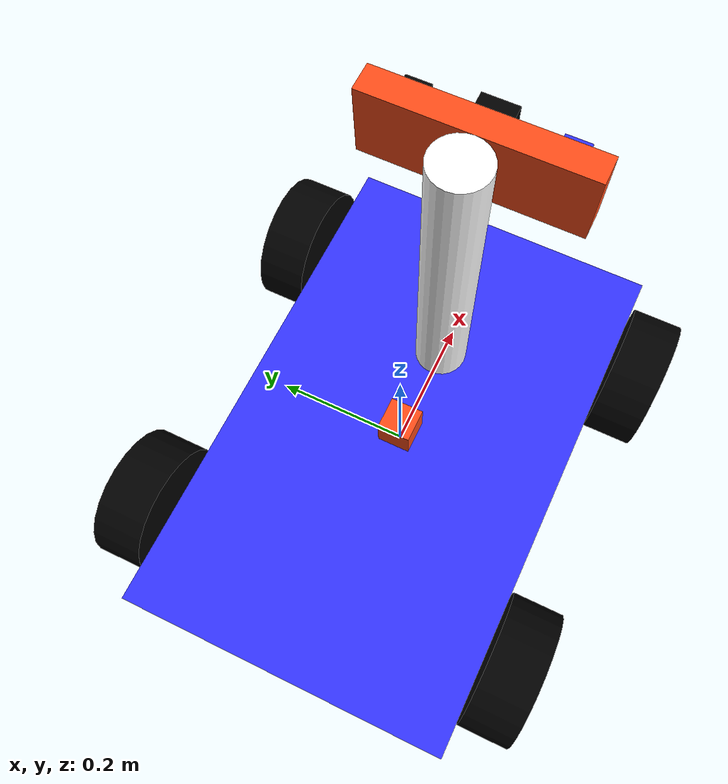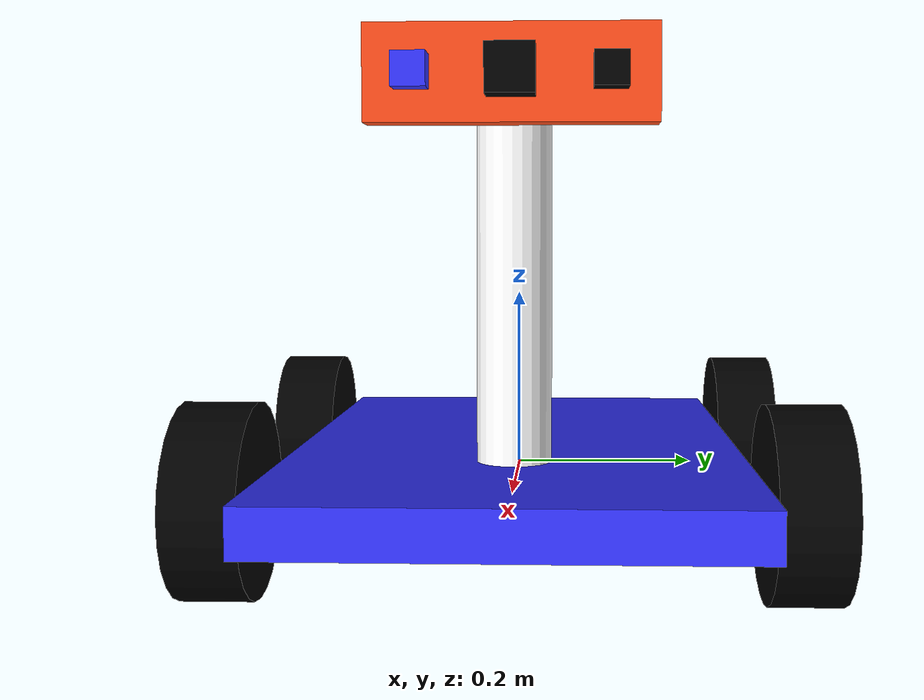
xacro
<?xml version='1.0'?>

<robot name="rover" xmlns:xacro="http://www.ros.org/wiki/xacro">

  <xacro:include filename="$(find rover)/urdf/rover.gazebo"/>

<!-- Materials-->

  <material name="white">
      <color rgba = "1 1 1 1"/>
  </material>
   <material name="orange">
      <color rgba = "1 0.3 0.1 1"/>
  </material>
   <material name="blue">
      <color rgba = "0.2 0.2 1 1"/>
  </material>

  <material name="black">
      <color rgba = "0 0 0 1"/>
  </material>

  <material name="red">
      <color rgba = "1 0 0 1"/>
  </material>

<!-- Footprint -->

  <link name='footprint'>
    <origin xyz="0 0 0" rpy="0 0 0 "/>
  </link>

<!-- Chassis -->

  <joint name="chassis_joint" type="fixed">
    <parent link="footprint"/>
    <child link="chassis"/>
  </joint>

  <link name='chassis'>
    <pose>0 0 0.1 0 0 0</pose>

    <inertial>
      <mass value="20.0"/>
      <origin xyz="0 0 0" rpy=" 0 0 0"/>
      <inertia
          ixx="0.1" ixy="0" ixz="0"
          iyy="0.1" iyz="0"
          izz="0.1"
      />
    </inertial>

    <collision>
      <origin xyz="0 0 0" rpy=" 0 0 0"/>
      <geometry>
       <box size="0.8 0.5 0.05"/>
      </geometry>
    </collision>

    <visual>
      <origin xyz="0 0 0" rpy=" 0 0 0"/>
      <geometry>
       <box size="0.8 0.5 0.05"/>
      </geometry>
      <material name="blue"/>
    </visual>

  </link>

<!-- rear_left_wheel-->

  <joint name="rear_left_joint" type="continuous">
    <parent link="chassis"/>
    <child link="rear_left_wheel"/>
    <origin xyz="-0.25 0.29 0" rpy=" 0 0 0"/>
    <axis xyz="0 1 0"/>
    <dynamics damping="1.0" friction="1.0"/>
  </joint>

  <link name="rear_left_wheel">
    <visual>
    <origin rpy="1.5708 0 0" xyz="0 0 0" />
        <geometry>
            <cylinder radius="0.1" length="0.075"/>
        </geometry>
        <material name = "black"/>
    </visual>

    <collision>
    <origin rpy="1.5708 0 0" xyz="0 0 0" />
        <geometry>
            <cylinder radius="0.1" length="0.075"/>
        </geometry>
    </collision>

    <inertial>
      <mass value="2.0"/>
      <origin xyz="0 0 0" rpy=" 0 0 0"/>
      <inertia
        ixx="0.1" ixy="0" ixz="0"
        iyy="0.1" iyz="0"
        izz="0.1"
      />
    </inertial>
  </link>

<!-- rear_right_wheel-->

  <joint name="rear_right_joint" type="continuous">
    <parent link="chassis"/>
    <child link="rear_right_wheel"/>
    <origin xyz="-0.25 -0.29 0" rpy="0 0 0"/>
    <axis xyz="0 1 0"/>
    <dynamics damping="1.0" friction="1.0"/>
  </joint>

  <link name="rear_right_wheel">
    <visual>
    <origin rpy="1.5708 0 0" xyz="0 0 0" />
        <geometry>
            <cylinder radius="0.1" length="0.075"/>
        </geometry>
        <material name = "black"/>
    </visual>

    <collision>
      <origin rpy="1.5708 0 0" xyz="0 0 0" />
        <geometry>
            <cylinder radius="0.1" length="0.075"/>
        </geometry>
      </collision>

    <inertial>
      <mass value="2.0"/>
      <origin xyz="0 0 0" rpy=" 0 0 0"/>
      <inertia
        ixx="0.1" ixy="0" ixz="0"
        iyy="0.1" iyz="0"
        izz="0.1"
      />
    </inertial>

  </link>

<!-- front_left_wheel-->
  <joint name="front_left_joint" type="continuous">
    <parent link="chassis"/>
    <child link="front_left_wheel"/>
    <origin xyz="0.25 0.29 0" rpy="0 0 0"/>
    <axis xyz="0 1 0"/>
    <dynamics damping="1.0" friction="1.0"/>
  </joint>

  <link name="front_left_wheel">
    <visual>
    <origin rpy="1.5708 0 0" xyz="0 0 0" />
        <geometry>
            <cylinder radius="0.1" length="0.075"/>
        </geometry>
        <material name = "black"/>
    </visual>

    <collision>
    <origin rpy="1.5708 0 0" xyz="0 0 0" />
        <geometry>
            <cylinder radius="0.1" length="0.075"/>
        </geometry>
    </collision>

    <inertial>
      <mass value="2.0"/>
      <origin xyz="0 0 0" rpy=" 0 0 0"/>
      <inertia
        ixx="0.1" ixy="0" ixz="0"
        iyy="0.1" iyz="0"
        izz="0.1"
        />
    </inertial>

  </link>

<!-- front_right_wheel-->

  <joint name="front_right_joint" type="continuous">
        <parent link="chassis"/>
        <child link="front_right_wheel"/>
        <origin xyz="0.25 -0.29 0" rpy="0 0 0"/>
        <axis xyz="0 1 0"/>
        <dynamics damping="1.0" friction="1.0"/>
  </joint>

  <link name="front_right_wheel">
    <visual>
      <origin rpy="1.5708 0 0" xyz="0 0 0" />
        <geometry>
            <cylinder radius="0.1" length="0.075"/>
        </geometry>
        <material name = "black"/>
    </visual>

      <collision>
      <origin rpy="1.5708 0 0" xyz="0 0 0" />
        <geometry>
            <cylinder radius="0.1" length="0.075"/>
        </geometry>
      </collision>

    <inertial>
      <mass value="2.0"/>
      <origin xyz="0 0 0" rpy=" 0 0 0"/>
      <inertia
            ixx="0.1" ixy="0" ixz="0"
            iyy="0.1" iyz="0"
            izz="0.1"
      />
    </inertial>
  </link>

<!--staff-->

  <joint name="staff_link" type="fixed">
    <parent link="chassis"/>
    <child link="staff"/>
    <origin xyz="0.15 0 0.25" rpy="0 0 0"/>
  </joint>

  <link name="staff">
    <visual>
      <geometry>
          <cylinder radius="0.04" length="0.46"/>
      </geometry>
      <material name = "white"/>
    </visual>

    <collision>
      <geometry>
        <cylinder radius="0.04" length="0.46"/>
      </geometry>
    </collision>

    <inertial>
      <mass value="2.0"/>
      <origin xyz="0 0 0" rpy=" 0 0 0"/>
      <inertia
          ixx="0.1" ixy="0" ixz="0"
          iyy="0.1" iyz="0"
          izz="0.1"
      />
    </inertial>
  </link>

<!--face-->
  <joint name="face_link" type="fixed">
    <parent link="staff"/>
    <child link="face"/>
    <origin xyz="0.06 0 0.18" rpy="0 0 0"/>
  </joint>

  <link name="face">
    <visual>
      <geometry>
          <box size="0.04 0.3 0.1"/>
      </geometry>
      <material name = "orange"/>
    </visual>

    <collision>
      <geometry>
        <box size="0.04 0.3 0.1"/>
      </geometry>
    </collision>

    <inertial>
      <mass value="2.0"/>
      <origin xyz="0 0 0" rpy=" 0 0 0"/>
      <inertia
          ixx="0.1" ixy="0" ixz="0"
          iyy="0.1" iyz="0"
          izz="0.1"
      />
    </inertial>
  </link>

  <!--sensors-->
  <!--camera-->
  <joint name="camera_joint" type="fixed">
    <parent link="face"/>
    <child link="camera"/>
    <origin xyz="0.035 0.1 0"/>
  </joint>

  <link name="camera">
    <inertial>
      <mass value="0.1"/>
      <origin xyz="0 0 0" rpy=" 0 0 0"/>
      <inertia
        ixx="0.1" ixy="0" ixz="0"
        iyy="0.1" iyz="0"
        izz="0.1"
      />
    </inertial>

    <collision>
      <geometry>
        <box size="0.035 0.035 0.035"/>
      </geometry>
    </collision>

    <visual>
      <geometry>
        <box size="0.035 0.035 0.035"/>
      </geometry>

      <material name="black"/>
    </visual>

  </link>

<!--imu-->

  <joint name="imu_joint" type="fixed">
    <parent link="chassis"/>
    <child link="imu"/>
    <origin xyz="0 0 0.05"/>
  </joint>

  <link name="imu">
    <inertial>
      <mass value="0.1"/>
      <origin xyz="0 0 0" rpy=" 0 0 0"/>
      <inertia
        ixx="0.1" ixy="0" ixz="0"
        iyy="0.1" iyz="0"
        izz="0.1"
      />
    </inertial>

    <collision>
    <origin xyz="0 0 0" rpy=" 0 0 0"/>
      <geometry>
        <box size="0.05 0.05 0.05"/>
      </geometry>
    </collision>

    <visual>
      <geometry>
        <box size="0.05 0.05 0.05"/>
      </geometry>

      <material name="orange"/>
    </visual>

  </link>

<!-- LiDAR Sensor -->
  <joint name="lidar_joint" type="fixed">
    <parent link="face"/>
    <child link="lidar"/>
    <origin xyz="0.035 -0.1 0"/>
  </joint>

  <link name="lidar">
    <inertial>
      <mass value="0.1"/>
      <origin xyz="0 0 0" rpy=" 0 0 0"/>
      <inertia
        ixx="0.1" ixy="0" ixz="0"
        iyy="0.1" iyz="0"
        izz="0.1"
      />
    </inertial>

    <collision>
    <origin xyz="0 0 0" rpy=" 0 0 0"/>
      <geometry>
        <box size="0.035 0.035 0.035"/>
      </geometry>
    </collision>

    <visual>
      <geometry>
        <box size="0.035 0.035 0.035"/>
      </geometry>

      <material name="blue"/>
    </visual>

  </link>

<!--zed2 camera-->

  <joint name="zed2_camera_joint" type="fixed">
    <parent link="face"/>
    <child link="zed2_camera"/>
    <origin xyz="0.035 0 0.00" rpy = "0 0 0 "/>
  </joint>

  <link name="zed2_camera">
    <inertial>
      <mass value="0.1"/>
      <origin xyz="0 0 0" rpy=" 0 0 0"/>
      <inertia
        ixx="0.1" ixy="0" ixz="0"
        iyy="0.1" iyz="0"
        izz="0.1"
      />
    </inertial>

    <collision>
    <origin xyz="0 0 0" rpy=" 0 0 0"/>
      <geometry>
        <box size="0.05 0.05 0.05"/>
      </geometry>
    </collision>

    <visual>
      <geometry>
        <box size="0.05 0.05 0.05"/>
      </geometry>

      <material name="black"/>
    </visual>

  </link>

  <joint name="zed2_optical_joint" type="fixed">
    <origin xyz="0 0 0" rpy="${-pi/2} 0 ${-pi/2}"/>
    <parent link="zed2_camera"/>
    <child link="zed2_optical"/>
  </joint>

  <link name="zed2_optical">
  </link>

<!--gps-->

  <joint name="gps_joint" type="fixed">
    <parent link="chassis"/>
    <child link="gps"/>
    <origin xyz="0 0 -0.05"/>
  </joint>

  <link name="gps">
    <inertial>
      <mass value="0.1"/>
      <origin xyz="0 0 0" rpy=" 0 0 0"/>
      <inertia
        ixx="0.1" ixy="0" ixz="0"
        iyy="0.1" iyz="0"
        izz="0.1"
      />
    </inertial>

    <collision>
    <origin xyz="0 0 0" rpy=" 0 0 0"/>
      <geometry>
        <box size="0.05 0.05 0.05"/>
      </geometry>
    </collision>

    <visual>
      <geometry>
        <box size="0.05 0.05 0.05"/>
      </geometry>

      <material name="red"/>
    </visual>

  </link>

</robot>
